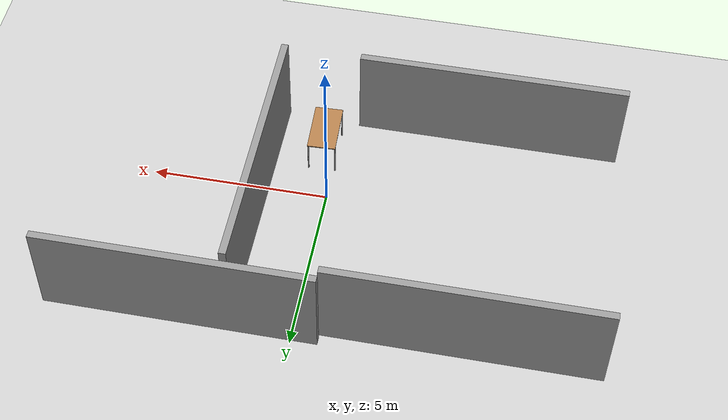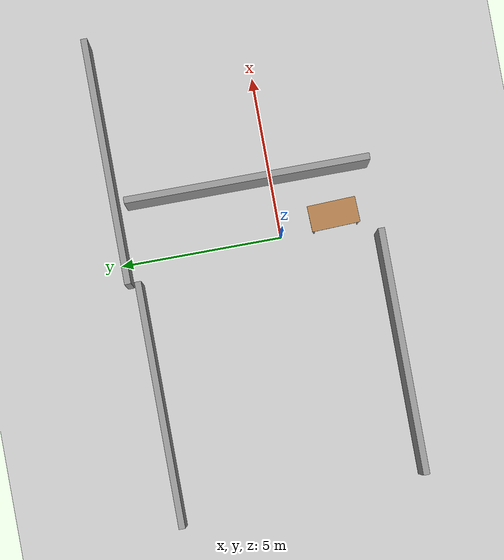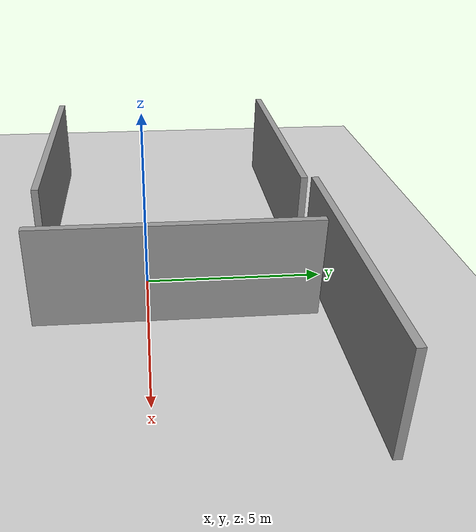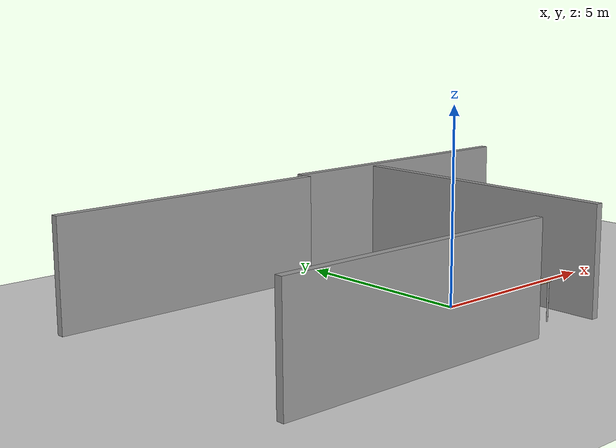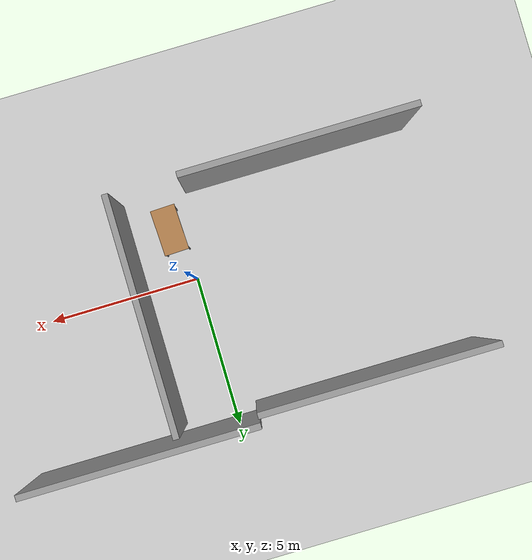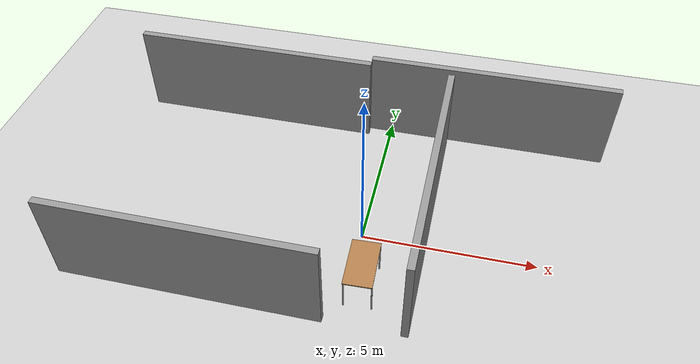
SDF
<sdf version="1.4">
 <world name="default">
  <model name="ground_plane">
   <static>1</static>
   <link name="link">
    <collision name="collision">
     <geometry><plane><normal>0 0 1</normal><size>100 100</size></plane></geometry>
     <surface><friction><ode><mu>100</mu><mu2>50</mu2></ode></friction></surface>
    </collision>
    <visual name="visual">
     <cast_shadows>0</cast_shadows>
     <geometry><plane><normal>0 0 1</normal><size>100 100</size></plane></geometry>
     <material>
      <script><uri>file://media/materials/scripts/gazebo.material</uri><name>Gazebo/Grey</name></script>
     </material>
    </visual>
    <velocity_decay><linear>0</linear><angular>0</angular></velocity_decay>
   </link>
  </model>
  <model name="grey_wall">
   <static>1</static>
   <link name="link">
    <pose>0 0 1.4 0 -0 0</pose>
    <collision name="collision"><geometry><box><size>7.5 0.2 2.8</size></box></geometry></collision>
    <visual name="visual">
     <cast_shadows>0</cast_shadows>
     <geometry><box><size>7.5 0.2 2.8</size></box></geometry>
     <material>
      <script>
       <uri>model://grey_wall/materials/scripts</uri>
       <uri>model://grey_wall/materials/textures</uri>
       <name>vrc/grey_wall</name>
      </script>
     </material>
    </visual>
    <velocity_decay><linear>0</linear><angular>0</angular></velocity_decay>
   </link>
   <pose>-4.45669 4.51369 0 0 -0 0</pose>
  </model>
  <model name="grey_wall_0">
   <static>1</static>
   <link name="link">
    <pose>0 0 1.4 0 -0 0</pose>
    <collision name="collision"><geometry><box><size>7.5 0.2 2.8</size></box></geometry></collision>
    <visual name="visual">
     <cast_shadows>0</cast_shadows>
     <geometry><box><size>7.5 0.2 2.8</size></box></geometry>
     <material>
      <script>
       <uri>model://grey_wall/materials/scripts</uri>
       <uri>model://grey_wall/materials/textures</uri>
       <name>vrc/grey_wall</name>
      </script>
     </material>
    </visual>
    <velocity_decay><linear>0</linear><angular>0</angular></velocity_decay>
   </link>
   <pose>-4.17438 -2.94975 0 0 -0 0</pose>
  </model>
  <model name="grey_wall_3">
   <static>1</static>
   <link name="link">
    <pose>0 0 1.4 0 -0 0</pose>
    <collision name="collision"><geometry><box><size>7.5 0.2 2.8</size></box></geometry></collision>
    <visual name="visual">
     <cast_shadows>0</cast_shadows>
     <geometry><box><size>7.5 0.2 2.8</size></box></geometry>
     <material>
      <script>
       <uri>model://grey_wall/materials/scripts</uri>
       <uri>model://grey_wall/materials/textures</uri>
       <name>vrc/grey_wall</name>
      </script>
     </material>
    </visual>
    <velocity_decay><linear>0</linear><angular>0</angular></velocity_decay>
   </link>
   <pose>1.76758 0.74778 0.00212 0 0 -1.57102</pose>
  </model>
  <model name="grey_wall_6">
   <static>1</static>
   <link name="link">
    <pose>0 0 1.4 0 -0 0</pose>
    <collision name="collision"><geometry><box><size>7.5 0.2 2.8</size></box></geometry></collision>
    <visual name="visual">
     <cast_shadows>0</cast_shadows>
     <geometry><box><size>7.5 0.2 2.8</size></box></geometry>
     <material>
      <script>
       <uri>model://grey_wall/materials/scripts</uri>
       <uri>model://grey_wall/materials/textures</uri>
       <name>vrc/grey_wall</name>
      </script>
     </material>
    </visual>
    <velocity_decay><linear>0</linear><angular>0</angular></velocity_decay>
   </link>
   <pose>3.02125 4.81927 0 0 -0 0</pose>
  </model>
  <model name="table">
   <static>1</static>
   <link name="link">
    <collision name="surface">
     <pose>0 0 1 0 -0 0</pose>
     <geometry><box><size>1.5 0.8 0.03</size></box></geometry>
     <surface><friction><ode><mu>0.6</mu><mu2>0.6</mu2></ode></friction></surface>
    </collision>
    <visual name="visual1">
     <pose>0 0 1 0 -0 0</pose>
     <geometry><box><size>1.5 0.8 0.03</size></box></geometry>
     <material>
      <script><uri>file://media/materials/scripts/gazebo.material</uri><name>Gazebo/Wood</name></script>
     </material>
    </visual>
    <collision name="front_left_leg">
     <pose>0.68 0.38 0.5 0 -0 0</pose>
     <geometry><cylinder><radius>0.02</radius><length>1</length></cylinder></geometry>
    </collision>
    <visual name="front_left_leg">
     <pose>0.68 0.38 0.5 0 -0 0</pose>
     <geometry><cylinder><radius>0.02</radius><length>1</length></cylinder></geometry>
     <material>
      <script><uri>file://media/materials/scripts/gazebo.material</uri><name>Gazebo/Grey</name></script>
     </material>
    </visual>
    <collision name="front_right_leg">
     <pose>0.68 -0.38 0.5 0 -0 0</pose>
     <geometry><cylinder><radius>0.02</radius><length>1</length></cylinder></geometry>
    </collision>
    <visual name="front_right_leg">
     <pose>0.68 -0.38 0.5 0 -0 0</pose>
     <geometry><cylinder><radius>0.02</radius><length>1</length></cylinder></geometry>
     <material>
      <script><uri>file://media/materials/scripts/gazebo.material</uri><name>Gazebo/Grey</name></script>
     </material>
    </visual>
    <collision name="back_right_leg">
     <pose>-0.68 -0.38 0.5 0 -0 0</pose>
     <geometry><cylinder><radius>0.02</radius><length>1</length></cylinder></geometry>
    </collision>
    <visual name="back_right_leg">
     <pose>-0.68 -0.38 0.5 0 -0 0</pose>
     <geometry><cylinder><radius>0.02</radius><length>1</length></cylinder></geometry>
     <material>
      <script><uri>file://media/materials/scripts/gazebo.material</uri><name>Gazebo/Grey</name></script>
     </material>
    </visual>
    <collision name="back_left_leg">
     <pose>-0.68 0.38 0.5 0 -0 0</pose>
     <geometry><cylinder><radius>0.02</radius><length>1</length></cylinder></geometry>
    </collision>
    <visual name="back_left_leg">
     <pose>-0.68 0.38 0.5 0 -0 0</pose>
     <geometry><cylinder><radius>0.02</radius><length>1</length></cylinder></geometry>
     <material>
      <script><uri>file://media/materials/scripts/gazebo.material</uri><name>Gazebo/Grey</name></script>
     </material>
    </visual>
    <velocity_decay><linear>0</linear><angular>0</angular></velocity_decay>
   </link>
   <pose>0.361141 -1.69258 0 0 0 -1.53468</pose>
  </model>
 </world>
</sdf>
